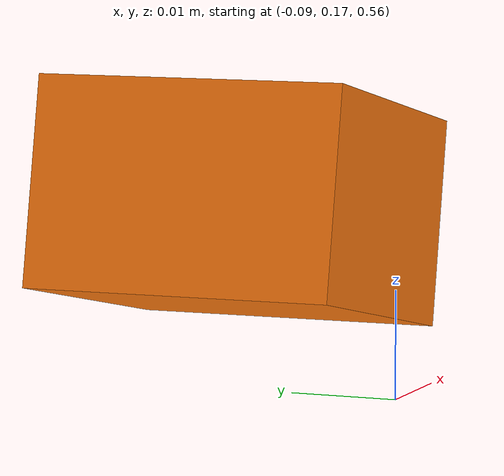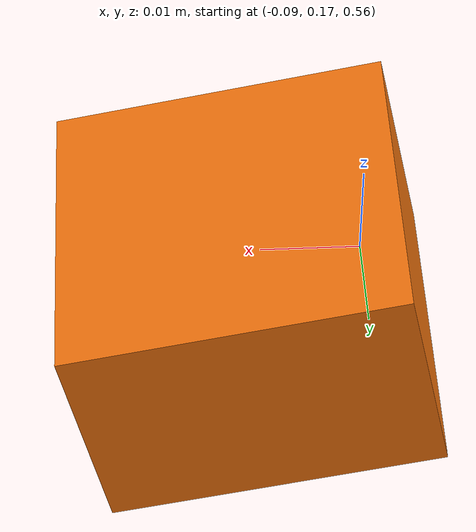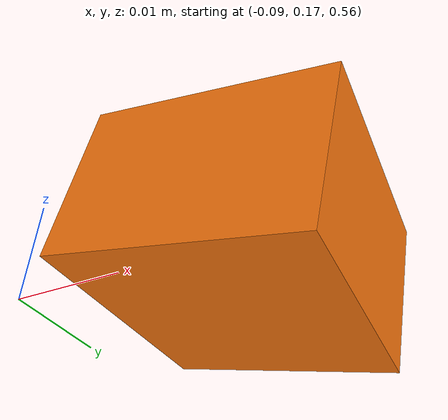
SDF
<?xml version="1.0"?>
<sdf version="1.10">
  <model name="stage9d_grasp_object">
    <static>false</static>
    <self_collide>false</self_collide>
    <allow_auto_disable>false</allow_auto_disable>
    <pose>-0.07774664053275518 0.19 0.5757939902418903 0 0.2 0</pose>
    <link name="stage9d_grasp_object_link">
      <gravity>true</gravity>
      <inertial>
        <mass>0.05</mass>
        <inertia>
          <ixx>0.000005416666666666667</ixx>
          <ixy>0</ixy>
          <ixz>0</ixz>
          <iyy>0.000005416666666666667</iyy>
          <iyz>0</iyz>
          <izz>0.0000075</izz>
        </inertia>
      </inertial>
      <collision name="stage9d_grasp_object_collision">
        <geometry><box><size>0.03 0.03 0.02</size></box></geometry>
        <surface>
          <friction><ode><mu>1.0</mu><mu2>1.0</mu2></ode></friction>
        </surface>
      </collision>
      <visual name="stage9d_grasp_object_visual">
        <geometry><box><size>0.03 0.03 0.02</size></box></geometry>
        <material>
          <ambient>0.95 0.45 0.05 1</ambient>
          <diffuse>0.95 0.45 0.05 1</diffuse>
        </material>
      </visual>
      <sensor name="stage9d_grasp_contact" type="contact">
        <always_on>true</always_on>
        <update_rate>100</update_rate>
        <contact>
          <collision>stage9d_grasp_object_collision</collision>
          <topic>/ayyo/stage9d/grasp_object/contacts</topic>
        </contact>
      </sensor>
    </link>
    <plugin filename="libstage9d_grasp_fixture.so"
            name="ayyo::stage9d::GraspFixture"/>
  </model>
</sdf>
